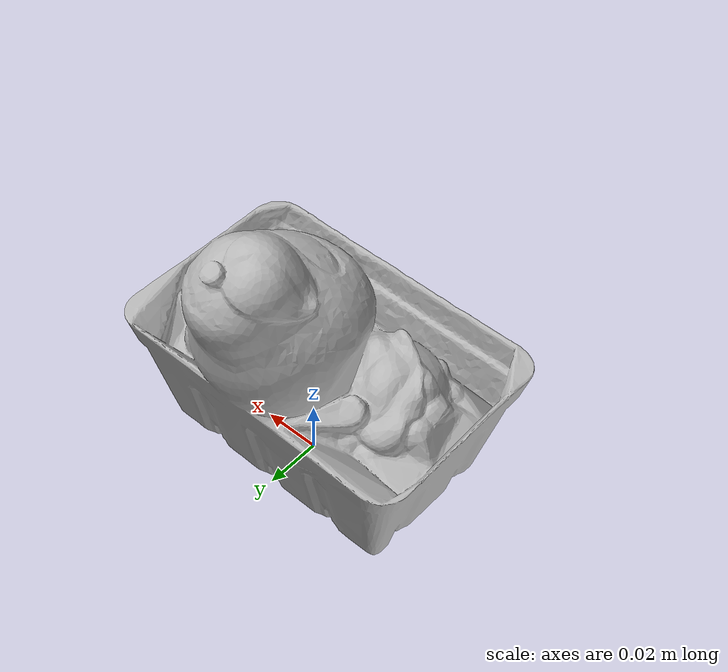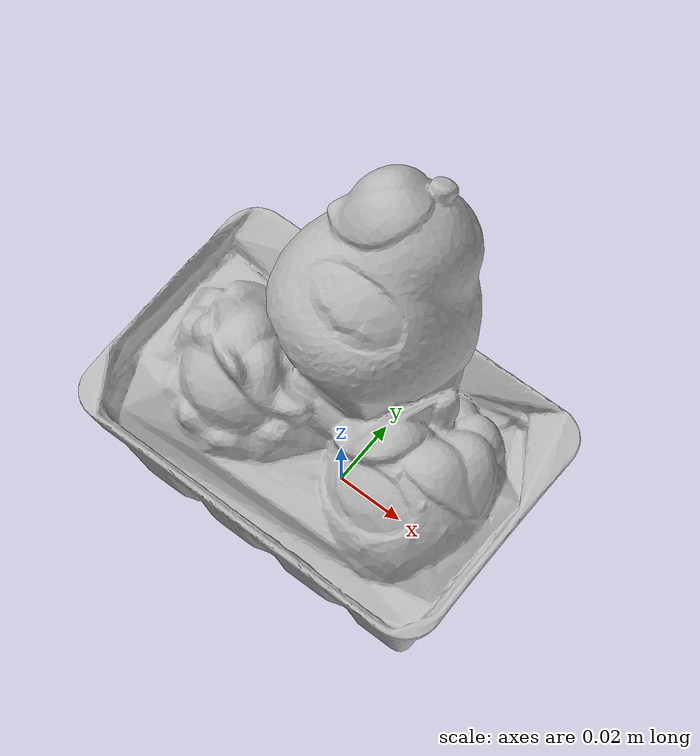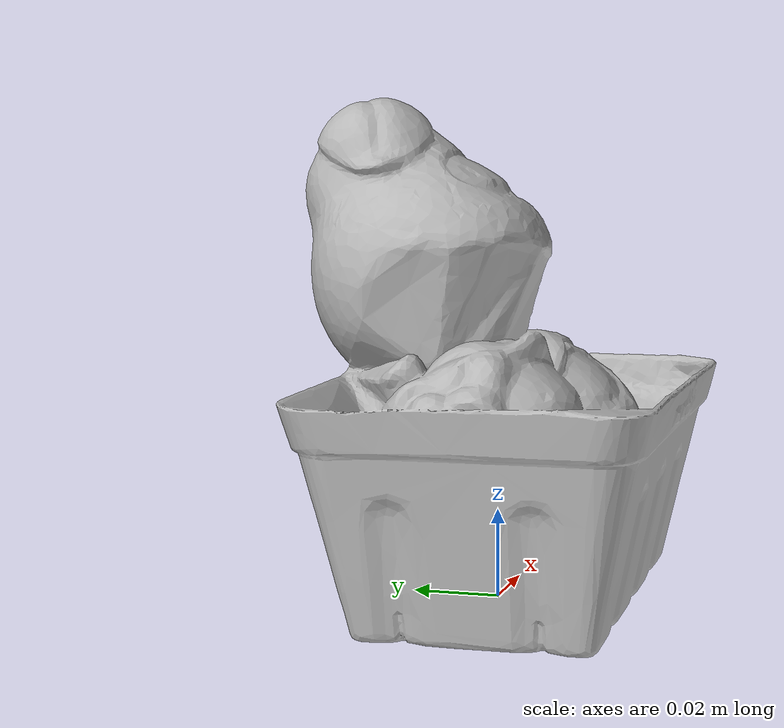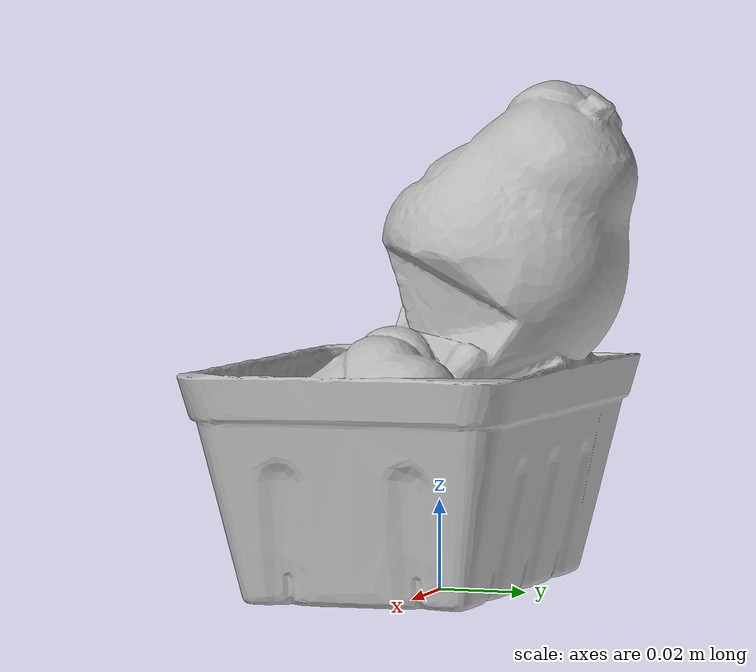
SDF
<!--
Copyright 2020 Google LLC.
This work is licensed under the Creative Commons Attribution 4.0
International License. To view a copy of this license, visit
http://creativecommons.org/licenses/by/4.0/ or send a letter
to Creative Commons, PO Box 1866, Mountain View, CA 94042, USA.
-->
<?xml version="1.0" ?>
<sdf version="1.6">
  <model name="Squirt_Strain_Fruit_Basket">
    <link name="link_0">
      <visual name="visual">
        <geometry>
          <mesh>
            <uri>meshes/model.obj</uri>
          </mesh>
        </geometry>
      </visual>
      <collision name="collision_0">
        <geometry>
          <mesh>
            <uri>meshes/model.obj</uri>
          </mesh>
        </geometry>
      </collision>
    </link>
  </model>
</sdf>
